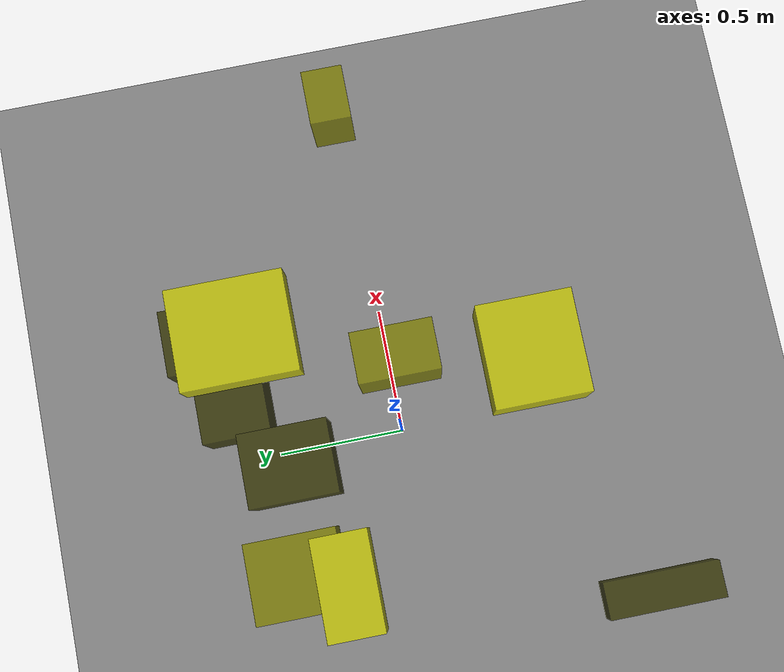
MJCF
<?xml version="1.0"?>
<mujoco model="obstacle_scene">
  <compiler angle="radian" coordinate="local"/>
  <option timestep="0.001" gravity="0 0 -9.81"/>

  <asset>
    <material name="obstacle_mat" rgba="0.8 0.8 0.0 0.8"/>
    <material name="ground_mat" rgba="0.5 0.5 0.5 1"/>
  </asset>

  <worldbody>
    <!-- Ground plane -->
    <geom name="ground" type="plane" size="3 3 0.1" material="ground_mat"/>

    <!-- Obstacles -->
    <body name="obstacle_0" pos="-0.131718 0.339136 1.139506">
      <geom name="obs_0" type="box" size="0.111434 0.134134 0.085500" rgba="0.2 0.2 0.0 0.8"/>
    </body>
    <body name="obstacle_1" pos="-0.471771 0.452223 0.522871">
      <geom name="obs_1" type="box" size="0.142155 0.163642 0.087860" rgba="0.5 0.5 0.0 0.8"/>
    </body>
    <body name="obstacle_2" pos="0.278366 0.426622 1.218356">
      <geom name="obs_2" type="box" size="0.154290 0.177509 0.054406" rgba="0.8 0.8 0.0 0.8"/>
    </body>
    <body name="obstacle_3" pos="0.177958 0.534714 0.737244">
      <geom name="obs_3" type="box" size="0.165876 0.114219 0.094033" rgba="0.2 0.2 0.0 0.8"/>
    </body>
    <body name="obstacle_4" pos="0.204626 -0.032644 0.651888">
      <geom name="obs_4" type="box" size="0.090139 0.143625 0.130056" rgba="0.5 0.5 0.0 0.8"/>
    </body>
    <body name="obstacle_5" pos="0.160554 -0.531754 0.393185">
      <geom name="obs_5" type="box" size="0.196332 0.181054 0.100537" rgba="0.8 0.8 0.0 0.8"/>
    </body>
    <body name="obstacle_6" pos="0.422930 0.662843 0.477028">
      <geom name="obs_6" type="box" size="0.120389 0.118246 0.089198" rgba="0.2 0.2 0.0 0.8"/>
    </body>
    <body name="obstacle_7" pos="0.930085 0.023014 1.175199">
      <geom name="obs_7" type="box" size="0.083124 0.062243 0.100307" rgba="0.5 0.5 0.0 0.8"/>
    </body>
    <body name="obstacle_8" pos="-0.532413 0.273467 0.662794">
      <geom name="obs_8" type="box" size="0.176000 0.098860 0.085749" rgba="0.8 0.8 0.0 0.8"/>
    </body>
    <body name="obstacle_9" pos="-0.744814 -0.744137 0.752797">
      <geom name="obs_9" type="box" size="0.061038 0.194476 0.051583" rgba="0.2 0.2 0.0 0.8"/>
    </body>
  </worldbody>
</mujoco>
